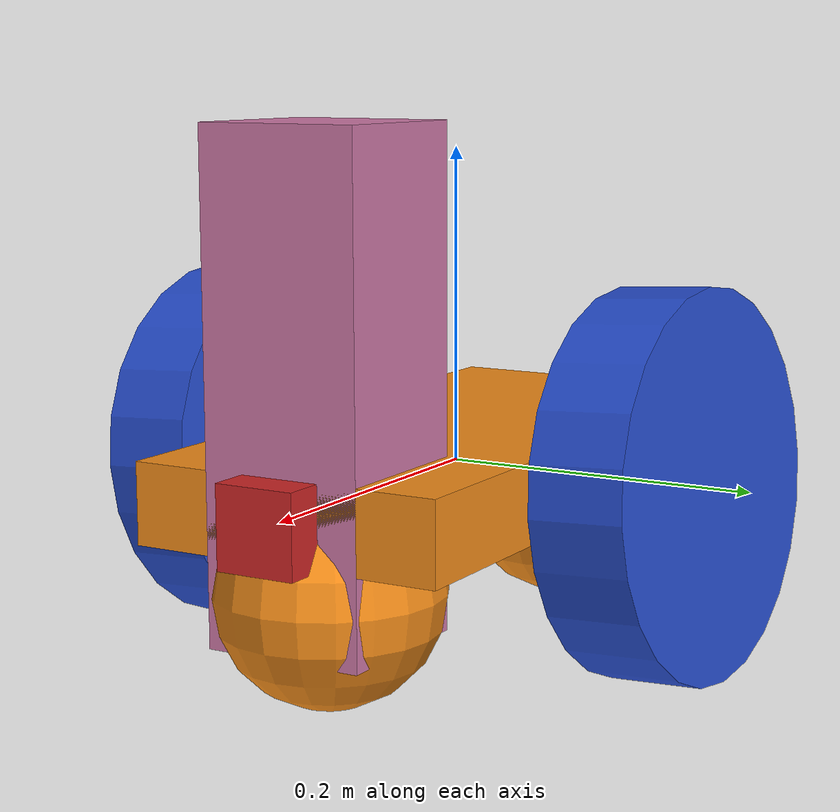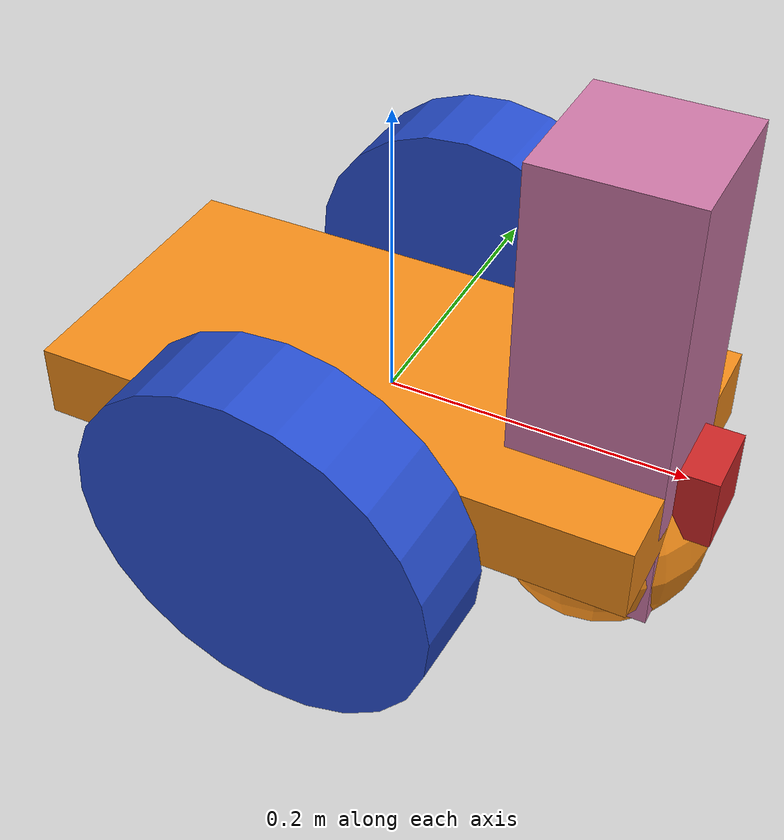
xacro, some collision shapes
<?xml version='1.0'?>

<robot name="project_robot" xmlns:xacro="http://www.ros.org/wiki/xacro">
  <xacro:include filename="$(find my_robot)/urdf/project_robot.gazebo" />
  <link name="robot_footprint"></link>

  <joint name="robot_footprint_joint" type="fixed">
    <origin xyz="0 0 0" rpy="0 0 0" />
    <parent link="robot_footprint"/>
    <child link="chassis" />
  </joint>

  <joint type="continuous" name="left_wheel_hinge">
    <origin xyz="0 0.15 0" rpy="0 0 0"/>
    <child link="left_wheel"/>
    <parent link="chassis"/>
    <axis xyz="0 1 0" rpy="0 0 0"/>
    <limit effort="10000" velocity="1000"/>
    <dynamics damping="1.0" friction="1.0"/>
  </joint>

  <joint type="continuous" name="right_wheel_hinge">
    <origin xyz="0 -0.15 0" rpy="0 0 0"/>
    <child link="right_wheel"/>
    <parent link="chassis"/>
    <axis xyz="0 1 0" rpy="0 0 0"/>
    <limit effort="10000" velocity="1000"/>
    <dynamics damping="1.0" friction="1.0"/>
  </joint>

  <joint type="fixed" name="camera_joint">
  	<origin xyz="0.2 0 0" rpy="0 0 0"/>
    <child link="camera"/>
    <parent link="chassis"/>
    <axis xyz="0 1 0" rpy="0 0 0"/>
    <limit effort="10000" velocity="1000"/>
    <dynamics damping="1.0" friction="1.0"/>
  </joint>

   <joint type="fixed" name="hokuyo_joint">
  	<origin xyz="0.15 0 0.07" rpy="0 0 0"/>
    <child link="hokuyo"/>
    <parent link="chassis"/>
    <axis xyz="0 1 0" rpy="0 0 0"/>
    <limit effort="10000" velocity="1000"/>
    <dynamics damping="1.0" friction="1.0"/>
  </joint>

  <link name='chassis'>
    <pose>0 0 0.1 0 0 0</pose>

    <inertial>
      <mass value="15.0"/>
      <origin xyz="0.0 0 0" rpy=" 0 0 0"/>
      <inertia
          ixx="0.1" ixy="0" ixz="0"
          iyy="0.1" iyz="0"
          izz="0.1"
      />
    </inertial>

    <collision name='collision'>
      <origin xyz="0 0 0" rpy=" 0 0 0"/>
      <geometry>
        <box size=".4 .2 .05"/>
      </geometry>
    </collision>

    <visual name='chassis_visual'>
      <origin xyz="0 0 0" rpy=" 0 0 0"/>
      <geometry>
        <box size=".4 .2 .05"/>
      </geometry>
    </visual>

    <collision name='back_caster_collision'>
      <origin xyz="-0.15 0 -0.05" rpy=" 0 0 0"/>
      <geometry>
        <sphere radius="0.0699"/>
      </geometry>
    </collision>

    <visual name='back_caster_visual'>
      <origin xyz="-0.15 0 -0.05" rpy=" 0 0 0"/>
      <geometry>
        <sphere radius="0.07"/>
      </geometry>
    </visual>

    <collision name='front_caster_collision'>
      <origin xyz="0.15 0 -0.05" rpy=" 0 0 0"/>
      <geometry>
        <sphere radius="0.0699"/>
      </geometry>
    </collision>

    <visual name='front_caster_visual'>
      <origin xyz="0.15 0 -0.05" rpy=" 0 0 0"/>
      <geometry>
        <sphere radius="0.07"/>
      </geometry>
    </visual>

  </link>
  <link name='left_wheel'>
  	<inertial>
      <mass value="5.0"/>
      <origin xyz="0 0 0" rpy=" 0 1.5707 1.5707"/>
      <inertia
          ixx="0.1" ixy="0" ixz="0"
          iyy="0.1" iyz="0"
          izz="0.1"
      />
    </inertial>
    <collision name='collision'>
    	<origin xyz="0 0 0" rpy=" 0 1.507 1.507"/>
        <geometry>
        	<cylinder radius="0.12" length="0.06"/>
        </geometry>
    </collision>
    <visual name='side_wheel_visual'>
    	<origin xyz="0 0 0" rpy=" 0 1.507 1.507"/>
        <geometry>
        	<cylinder radius="0.12" length="0.06"/>
        </geometry>
    </visual>
  </link>
  <link name='right_wheel'>
  	<inertial>
      <mass value="5.0"/>
      <origin xyz="0 0 0" rpy=" 0 1.5707 1.5707"/>
      <inertia
          ixx="0.1" ixy="0" ixz="0"
          iyy="0.1" iyz="0"
          izz="0.1"
      />
    </inertial>
    <collision name='collision'>
    	<origin xyz="0 0 0" rpy=" 0 1.507 1.507"/>
        <geometry>
        	<cylinder radius="0.12" length="0.06"/>
        </geometry>
    </collision>
    <visual name='side_wheel_visual'>
    	<origin xyz="0 0 0" rpy=" 0 1.507 1.507"/>
        <geometry>
        	<cylinder radius="0.12" length="0.06"/>
        </geometry>
    </visual>
  </link>

  <link name='camera'>
  	<box_inertia m="0.1" x="0.05" y="0.05" z="0.05" />
  	<inertial>
      <mass value="0.1"/>
      <origin xyz="0 0 0" rpy=" 0 0 0"/>
      <inertia ixx="1e-6" ixy="0" ixz="0" iyy="1e-6" iyz="0" izz="1e-6" />
    </inertial>
    <collision name='camera_collision'>
    	<origin xyz="0 0 0" rpy=" 0 0 0"/>
        <geometry>
        	<box size = "0.05 0.05 0.05"/>
        </geometry>
    </collision>
    <visual name='camera_visual'>
    	<origin xyz="0 0 0" rpy=" 0 0 0"/>
        <geometry>
        	<box size = "0.05 0.05 0.05"/>
        </geometry>
    </visual>
  </link>

  <joint name="camera_optical_joint" type="fixed">
    <origin xyz="0 0 0" rpy="0 0 0"/>
    <parent link="camera"/>
    <child link="camera_link_optical"/>
  </joint>

  <link name="camera_link_optical">
  </link>

   <link name='hokuyo'>
  	<inertial>
      <mass value="1e-5"/>
      <origin xyz="0 0 0" rpy=" 0 0 0"/>
      <inertia ixx="1e-6" ixy="0" ixz="0" iyy="1e-6" iyz="0" izz="1e-6" />
    </inertial>
    <collision name='hokuyo_collision'>
    	<origin xyz="0 0 0" rpy=" 0 0 0"/>
        <geometry>
        	<box size = "0.1 0.1 0.3"/>
        </geometry>
    </collision>
    <visual name='hokuyo_visual'>
    	<origin xyz="0 0 0" rpy=" 0 0 0"/>
        <geometry>
        	<mesh filename="package://my_robot/meshes/hokuyo.dae" />
        </geometry>
    </visual>
  </link>

  <gazebo reference="left_wheel">
    <material>Gazebo/Blue</material>
  </gazebo>

  <gazebo reference="right_wheel">
    <material>Gazebo/Blue</material>
  </gazebo>

  <gazebo reference="chassis">
    <material>Gazebo/Orange</material>
  </gazebo>

  <gazebo reference="camera">
    <material>Gazebo/Red</material>
  </gazebo>
</robot>
